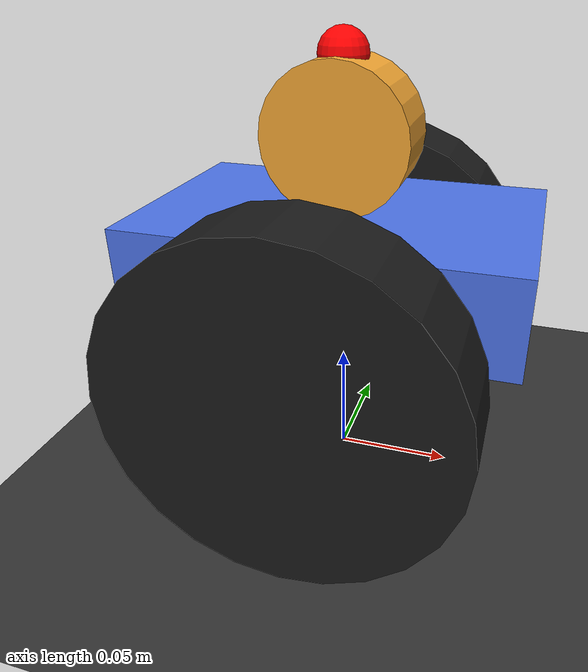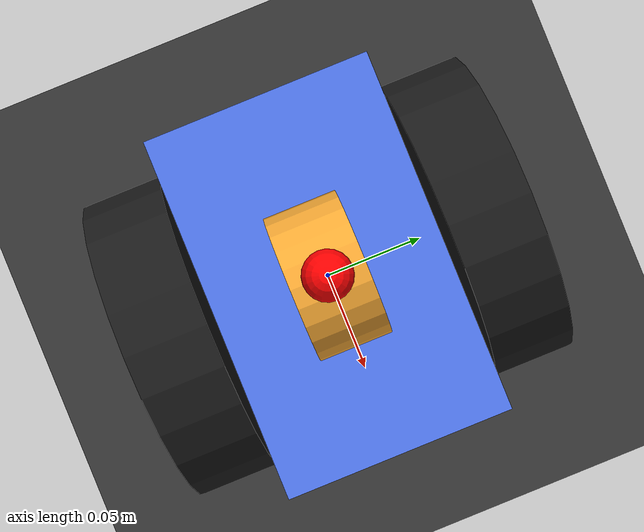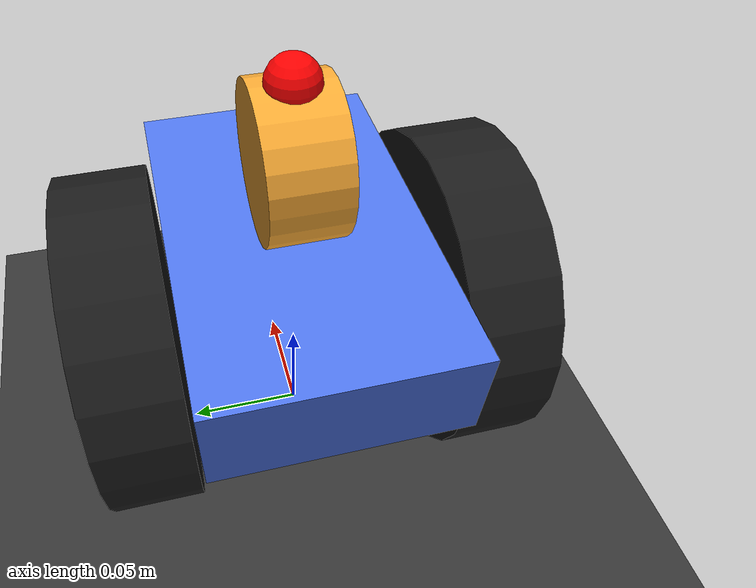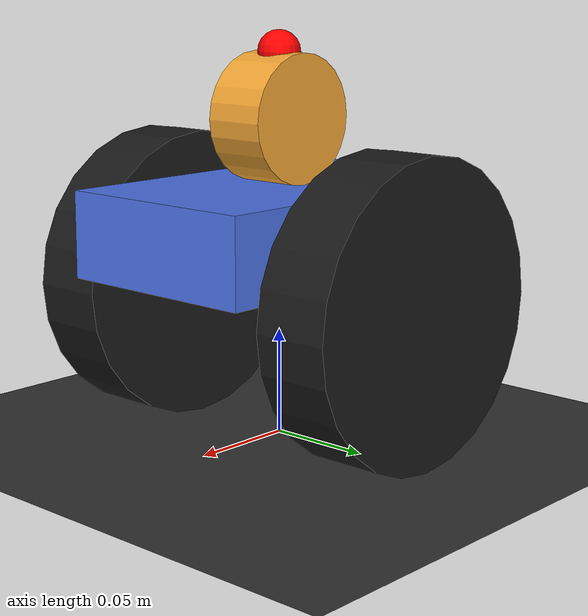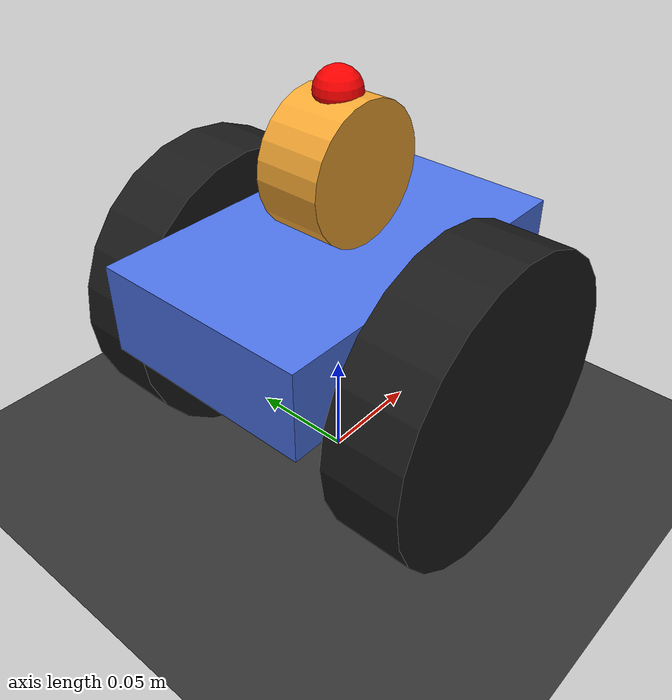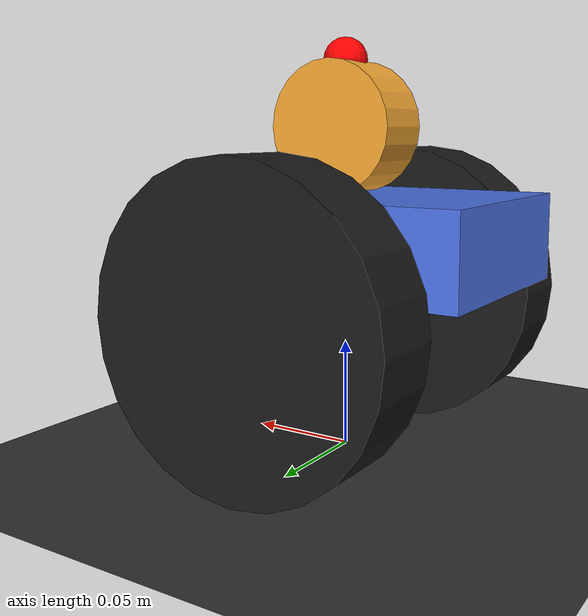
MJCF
<mujoco model="two_wheel_balancer">
  <compiler angle="radian" coordinate="local" inertiafromgeom="true"/>
  <option timestep="0.002" gravity="0 0 -9.81" iterations="50" integrator="RK4"/>
  <size njmax="2000" nconmax="2000"/>

  <default>
    <!-- General -->
    <geom contype="1" conaffinity="1" rgba="0.7 0.7 0.7 1" friction="1.2 0.02 0.001"/>
    <joint damping="0.02" armature="0.002"/>
    <motor ctrllimited="true" ctrlrange="-25 25"/>
  </default>

  <worldbody>
    <!-- Ground -->
    <geom name="floor" type="plane" pos="0 0 0" size="20 20 0.1" rgba="0.2 0.2 0.2 1"
          friction="1.5 0.02 0.001"/>
    <!-- Lighting -->
    <light name="sun" pos="0 0 5" dir="0 0 -1" directional="true"
           diffuse="1 1 1" specular="0.2 0.2 0.2" castshadow="true"/>
    <light name="fill" pos="2 2 2" dir="-1 -1 -1" directional="true"
       diffuse="0.4 0.4 0.4" specular="0 0 0" castshadow="false"/>
    <!-- Robot base frame -->
    <!-- Place COM above wheels so it behaves like an inverted pendulum on wheels -->
    <body name="robot" pos="0 0 0">
      <!-- Free joint: robot can move and rotate in 3D -->
      <freejoint name="root"/>

      <!-- Chassis: a box above wheels -->
      <geom name="chassis" type="box" pos="0 0 0.10" size="0.08 0.05 0.02"
            density="600" rgba="0.3 0.45 0.9 1"/>

      <!-- Gyroscope module (replaces top mass) -->
      <geom name="gyro_module" type="cylinder" pos="0 0 0.15"
            euler="1.57079632679 0 0" size="0.03 0.015"
            density="550" rgba="0.95 0.65 0.2 1"/>

      <!-- Left wheel -->
    <body name="wheel_L" pos="0 -0.07 0.07">
    <!-- axle along Y (left-right), wheel rolls along X -->
    <joint name="wheel_L_hinge" type="hinge" pos="0 0 0" axis="0 1 0"
           limited="false" damping="0.08" armature="0.01"/>
    <!-- cylinder axis is local Z by default, rotate geom so its axis aligns with Y -->
    <geom name="wheel_L_geom" type="cylinder"
        euler="1.57079632679 0 0"
        size="0.07 0.018"
        density="800"
        rgba="0.1 0.1 0.1 1"
        friction="2.0 0.02 0.001"/>
</body>

<!-- Right wheel -->
<body name="wheel_R" pos="0 0.07 0.07">
  <joint name="wheel_R_hinge" type="hinge" pos="0 0 0" axis="0 1 0"
         limited="false" damping="0.08" armature="0.01"/>
  <geom name="wheel_R_geom" type="cylinder"
        euler="1.57079632679 0 0"
        size="0.07 0.018"
        density="800"
        rgba="0.1 0.1 0.1 1"
        friction="2.0 0.02 0.001"/>
</body>

      <!-- Optional: a small caster / skid to prevent endless rolling on pitch extremes (comment out if not needed) -->

      <!-- Sites for debugging / sensors -->
      <site name="imu_site" pos="0 0 0.15" size="0.008" rgba="1 0.5 0 1"/>
      <site name="com_site" pos="0 0 0.18" size="0.01" rgba="1 0 0 1"/>
    </body>
  </worldbody>

  <actuator>
    <!-- Left / right wheel motors -->
    <motor name="left_wheel_motor" joint="wheel_L_hinge" gear="1.5"/>
    <motor name="right_wheel_motor" joint="wheel_R_hinge" gear="1.5"/>
  </actuator>

  <sensor>
    <!-- Useful for RL observation -->
    <framequat name="base_quat" objtype="body" objname="robot"/>
    <framelinvel name="base_linvel" objtype="body" objname="robot"/>
    <frameangvel name="base_angvel" objtype="body" objname="robot"/>
    <gyro name="imu_gyro" site="imu_site"/>

    <jointpos name="q_wheel_L" joint="wheel_L_hinge"/>
    <jointvel name="qd_wheel_L" joint="wheel_L_hinge"/>
    <jointpos name="q_wheel_R" joint="wheel_R_hinge"/>
    <jointvel name="qd_wheel_R" joint="wheel_R_hinge"/>

    <!-- Contact force on chassis (rough indicator of fall/impact) -->
    <touch name="touch_chassis" site="com_site"/>
  </sensor>
</mujoco>
